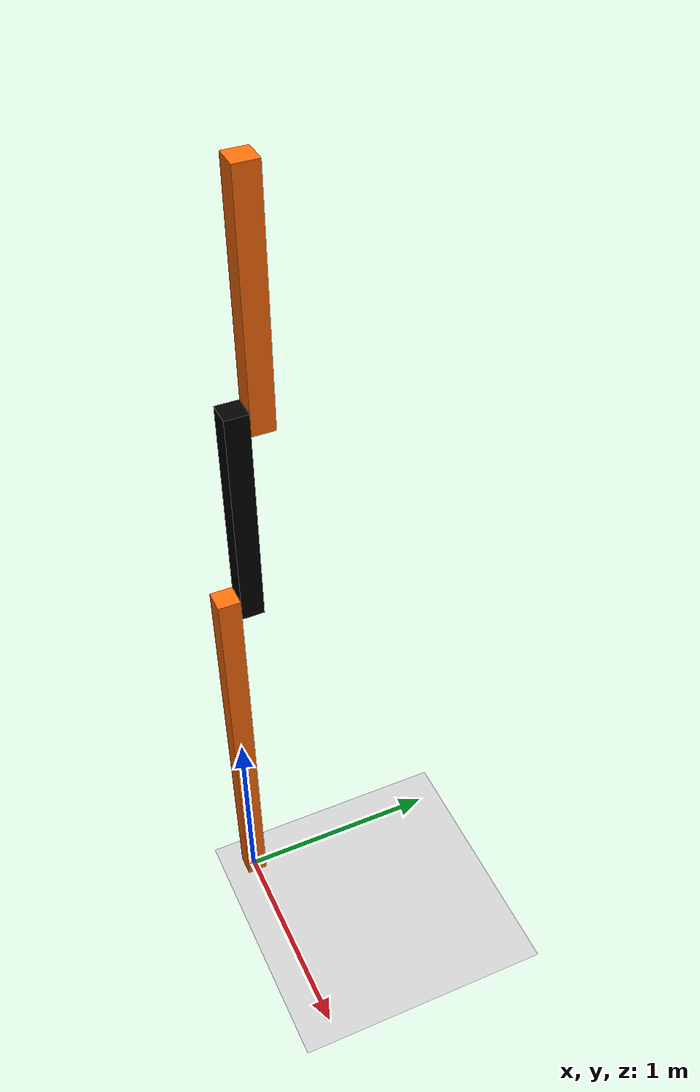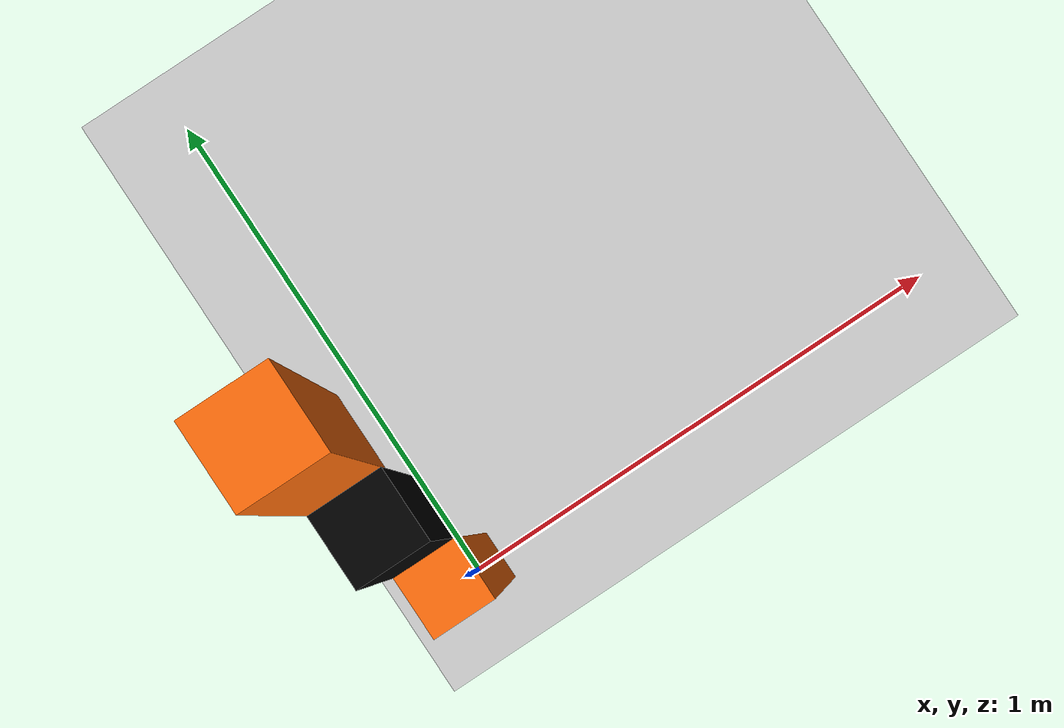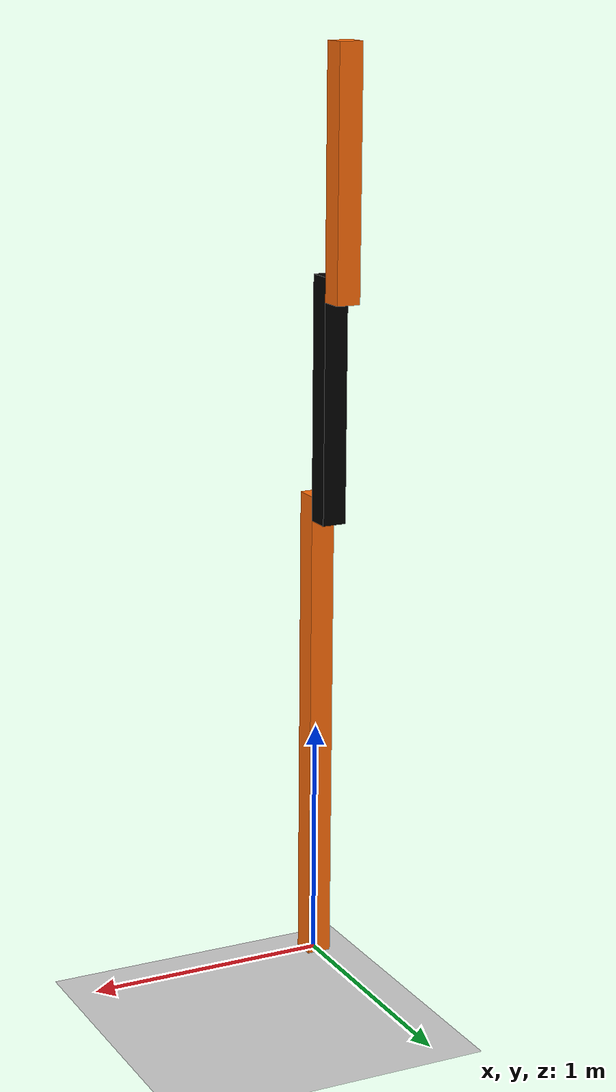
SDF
<sdf version="1.10">
  <world name="empty">
    <physics name="1ms" type="ignored">
      <max_step_size>0.001</max_step_size>
      <real_time_factor>1.0</real_time_factor>
    </physics>
    <plugin filename="gz-sim-physics-system" name="gz::sim::systems::Physics" />
    <plugin filename="gz-sim-user-commands-system" name="gz::sim::systems::UserCommands" />
    <plugin filename="gz-sim-scene-broadcaster-system" name="gz::sim::systems::SceneBroadcaster" />
    <plugin filename="gz-sim-contact-system" name="gz::sim::systems::Contact" />

    <light type="directional" name="sun">
      <cast_shadows>true</cast_shadows>
      <pose>0 0 10 0 0 0</pose>
      <diffuse>0.8 0.8 0.8 1</diffuse>
      <specular>0.2 0.2 0.2 1</specular>
      <attenuation>
        <range>1000</range>
        <constant>0.9</constant>
        <linear>0.01</linear>
        <quadratic>0.001</quadratic>
      </attenuation>
      <direction>-0.5 0.1 -0.9</direction>
    </light>

    <include>
      <uri>model://ground_plane</uri>
    </include>

    <include>
      <uri>model://rrbot</uri>
    </include>
  </world>
</sdf>

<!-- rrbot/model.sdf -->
<sdf version="1.8">
  <model name='rrbot'>
    <link name='link1'>
      <pose>0 0 0 0 -0 0</pose>
      <inertial>
        <pose>0 0 1 0 -0 0</pose>
        <mass>1</mass>
        <inertia>
          <ixx>0.334167</ixx>
          <ixy>0</ixy>
          <ixz>0</ixz>
          <iyy>0.334167</iyy>
          <iyz>0</iyz>
          <izz>0.00166667</izz>
        </inertia>
      </inertial>
      <collision name='link1_collision'>
        <pose>0 0 1 0 -0 0</pose>
        <geometry>
          <box>
            <size>0.1 0.1 2</size>
          </box>
        </geometry>
      </collision>
      <visual name='link1_visual'>
        <pose>0 0 1 0 -0 0</pose>
        <geometry>
          <box>
            <size>0.1 0.1 2</size>
          </box>
        </geometry>
        <material>
          <diffuse> 1 0.423529412 0.039215686 1</diffuse>
          <ambient> 1 0.423529412 0.039215686 1</ambient>
          <specular>1 0.423529412 0.039215686 1</specular>
        </material>
      </visual>
    </link>
    <joint name='joint1' type='revolute'>
      <pose relative_to='link1'>0 0.1 1.95 0 -0 0</pose>
      <parent>link1</parent>
      <child>link2</child>
      <axis>
        <xyz>0 1 0</xyz>
        <limit>
          <lower>-1e+16</lower>
          <upper>1e+16</upper>
        </limit>
        <dynamics>
          <damping>0.7</damping>
          <friction>0.0</friction>
          <spring_reference>0</spring_reference>
          <spring_stiffness>0</spring_stiffness>
        </dynamics>
      </axis>
    </joint>
    <link name='link2'>
      <pose relative_to='joint1'>0 0 0 0 -0 0</pose>
      <inertial>
        <pose>0 0 0.45 0 -0 0</pose>
        <mass>1</mass>
        <inertia>
          <ixx>0.0841667</ixx>
          <ixy>0</ixy>
          <ixz>0</ixz>
          <iyy>0.0841667</iyy>
          <iyz>0</iyz>
          <izz>0.00166667</izz>
        </inertia>
      </inertial>
      <collision name='link2_collision'>
        <pose>0 0 0.45 0 -0 0</pose>
        <geometry>
          <box>
            <size>0.1 0.1 1</size>
          </box>
        </geometry>
      </collision>
      <visual name='link2_visual'>
        <pose>0 0 0.45 0 -0 0</pose>
        <geometry>
          <box>
            <size>0.1 0.1 1</size>
          </box>
        </geometry>
        <material>
          <diffuse> 0 0 0 1</diffuse>
          <ambient> 0 0 0 1</ambient>
          <specular>0 0 0 1</specular>
        </material>
      </visual>
    </link>
    <joint name='joint2' type='revolute'>
      <pose relative_to='link2'>0 0.1 0.9 0 -0 0</pose>
      <parent>link2</parent>
      <child>link3</child>
      <axis>
        <xyz>0 1 0</xyz>
        <limit>
          <lower>-1e+16</lower>
          <upper>1e+16</upper>
        </limit>
        <dynamics>
          <damping>0.7</damping>
          <friction>0.0</friction>
          <spring_reference>0</spring_reference>
          <spring_stiffness>0</spring_stiffness>
        </dynamics>
      </axis>
    </joint>
    <link name='link3'>
      <pose relative_to='joint2'>0 0 0 0 -0 0</pose>
      <inertial>
        <pose>0 0 0.45 0 -0 0</pose>
        <mass>1</mass>
        <inertia>
          <ixx>0.0841667</ixx>
          <ixy>0</ixy>
          <ixz>0</ixz>
          <iyy>0.0841667</iyy>
          <iyz>0</iyz>
          <izz>0.00166667</izz>
        </inertia>
      </inertial>
      <collision name='link3_collision'>
        <pose>0 0 0.45 0 -0 0</pose>
        <geometry>
          <box>
            <size>0.1 0.1 1</size>
          </box>
        </geometry>
      </collision>
      <visual name='link3_visual'>
        <pose>0 0 0.45 0 -0 0</pose>
        <geometry>
          <box>
            <size>0.1 0.1 1</size>
          </box>
        </geometry>
        <material>
          <diffuse> 1 0.423529412 0.039215686 1</diffuse>
          <ambient> 1 0.423529412 0.039215686 1</ambient>
          <specular>1 0.423529412 0.039215686 1</specular>
        </material>
      </visual>
    </link>
  </model>
</sdf>
